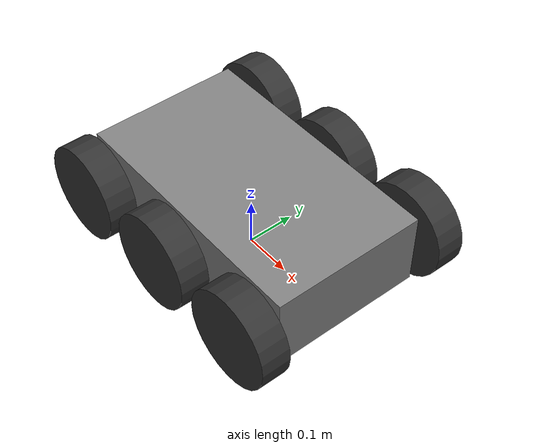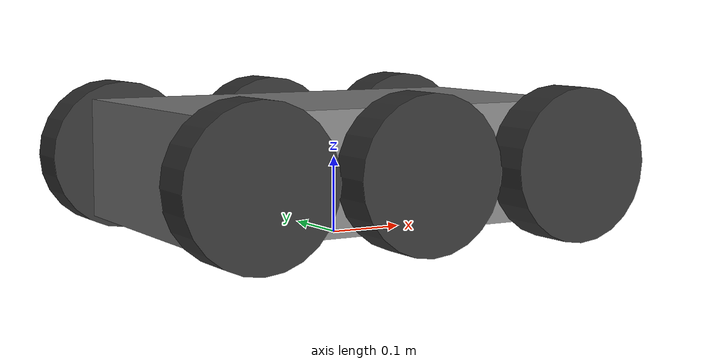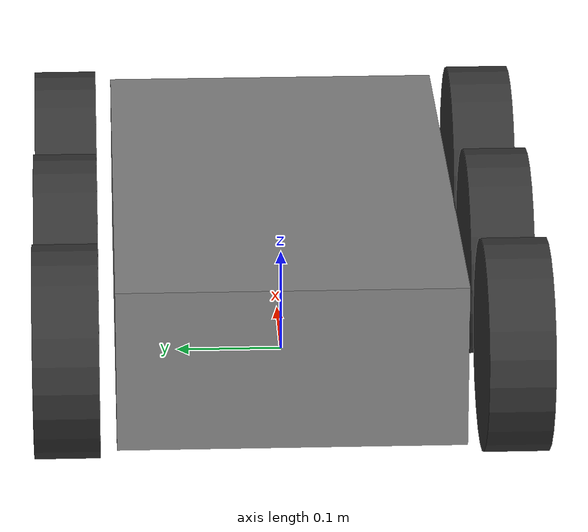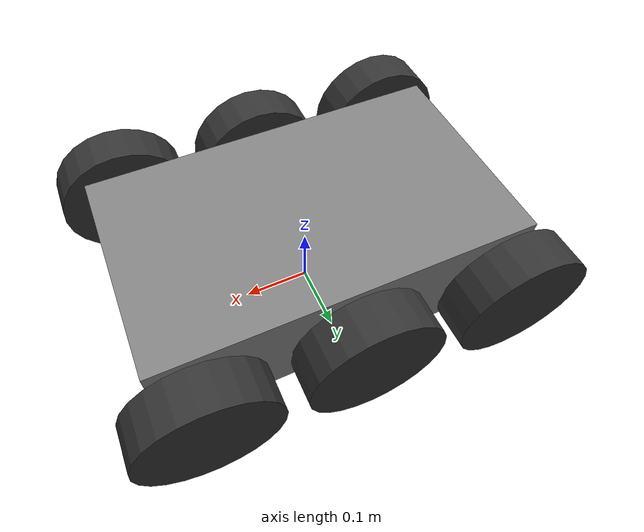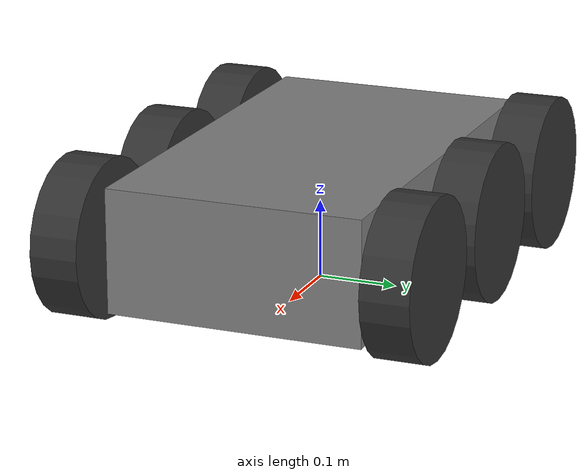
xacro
<?xml version="1.0"?>
<robot xmlns:controller="http://playerstage.sourceforge.net/gazebo/xmlschema/#controller"
  xmlns:interface="http://playerstage.sourceforge.net/gazebo/xmlschema/#interface"
  xmlns:xacro="http://ros.org/wiki/xacro"
  name="calvin_base">

  <xacro:property name="M_PI" value="3.1415926535897931" />

  <xacro:property name="wheel_width" value="0.06" />
  <xacro:property name="wheel_radius" value="0.0985" />
  <xacro:property name="axis_length" value="0.41" />
  <xacro:property name="wheel_x_offset" value="0.225" />
  <xacro:property name="wheel_z_offset" value="0.0" />
  <xacro:property name="turning_adaptation" value="0.69" />
  <xacro:property name="mass" value="10.0" />
  <xacro:property name="imu_stdev" value="0.00017" />

  <link name="base_link">
    <visual>
      <origin xyz="0 0 0" rpy="0 0 0" />
      <geometry>
        <box size="0.55 0.32 0.155" />
      </geometry>

      <material name="grey" >
        <color rgba="0.5 0.5 0.5 1" />
      </material>
    </visual>
    <collision>
      <origin xyz="0 0 0" rpy="0 0 0" />
      <geometry>
        <box size="1 1 1" />
      </geometry>
    </collision>
    <inertial>
<!--TODO where does the following come from? -->
<!--TODO add comment to kurt indoor urdf -->
      <mass value="${mass}" />
      <origin xyz="0.0 0.0 -0.040426445" />
      <inertia ixx="${mass * 0.007597848}" ixy="0.0" ixz="0.0"
        iyy="${mass * 0.012357128}" iyz="0.0"
        izz="${mass * 0.015397958}" />
    </inertial>
  </link>

  <gazebo reference="base_link">
    <material value="Gazebo/Grey" />
  </gazebo>

  <!-- publish ground truth for pose of base_footprint -->
  <gazebo>
    <controller:gazebo_ros_p3d name="base_footprint_controller" plugin="libgazebo_ros_p3d.so">
      <alwaysOn>true</alwaysOn>
      <updateRate>30.0</updateRate>
      <bodyName>base_footprint</bodyName>
      <topicName>base_footprint_pose_ground_truth</topicName>
      <gaussianNoise>0.0</gaussianNoise>
      <frameName>map</frameName>
      <interface:position name="base_footprint_p3d_position_iface" />
    </controller:gazebo_ros_p3d>
  </gazebo>

  <!-- inertial measurement unit for gazebo -->
  <xacro:imu_gazebo link="base_link" imu_topic="imu" update_rate="100.0" stdev="${imu_stdev}" />

  <xacro:macro name="calvin_wheel" params="name xyz rotate_visual">
    <!-- rotate_visual: 0 for right side, 1 for left side -->
    <link name="${name}_wheel_link">
      <visual>
        <origin xyz="0 0 0" rpy="${M_PI/2} 0 ${rotate_visual * M_PI}" />
        <geometry>
          <cylinder length="${wheel_width}" radius="${wheel_radius}"/>
        </geometry>

        <material name="blackish">
          <color rgba="0.2 0.2 0.2 1"/>
        </material>
      </visual>
      <collision>
        <origin xyz="0 0 0" rpy="${M_PI/2} 0 0" />
        <geometry>
          <!-- using STL for collision to fix http://answers.ros.org/question/2368/gazebo-model-wheels-slip-after-upgrade-to-electric -->
          <cylinder length="${wheel_width}" radius="${wheel_radius}"/>
        </geometry>
      </collision>
      <inertial>
<!--TODO where does the following come from? -->
<!--TODO add comment to kurt indoor urdf -->
        <mass value="0.075" />
        <origin xyz="0 0 0" />
        <inertia ixx="0.000066031" ixy="0.0" ixz="0.0"
          iyy="0.000129786" iyz="0.0"
          izz="0.000066031" />
      </inertial>
    </link>

    <!-- friction parameters -->
    <gazebo reference="${name}_wheel_link">
      <!-- PR2: -->

      <!-- Turtlebot: -->
      <mu1 value="10"/>
      <mu2 value="10"/>
      <kp value="100000000.0"/>
      <kd value="10000.0"/>
      <fdir1 value="1 0 0"/>  <!-- see http://answers.ros.org/question/607/rotation-error-in-gazebo-simulation -->
    </gazebo>

    <joint name="${name}_wheel_joint" type="continuous">
      <origin xyz="${xyz}" rpy="0 0 0" />
      <parent link="base_link"/>
      <child link="${name}_wheel_link"/>
      <axis xyz="0 1 0"/>
    </joint>
  </xacro:macro>

  <xacro:calvin_wheel name="left_front" xyz="${wheel_x_offset} ${axis_length/2} ${wheel_z_offset}" rotate_visual="1" />
  <xacro:calvin_wheel name="left_middle" xyz="0 ${axis_length/2} ${wheel_z_offset}" rotate_visual="1" />
  <xacro:calvin_wheel name="left_rear" xyz="${-wheel_x_offset} ${axis_length/2} ${wheel_z_offset}" rotate_visual="1" />
  <xacro:calvin_wheel name="right_front" xyz="${wheel_x_offset} ${-axis_length/2} ${wheel_z_offset}" rotate_visual="0" />
  <xacro:calvin_wheel name="right_middle" xyz="0 ${-axis_length/2} ${wheel_z_offset}" rotate_visual="0" />
  <xacro:calvin_wheel name="right_rear" xyz="${-wheel_x_offset} ${-axis_length/2} ${wheel_z_offset}" rotate_visual="0" />

  <!-- base_footprint is a fictitious link(frame) that is on the ground right below base_link origin,
       navigation stack dedpends on this frame -->
  <link name="base_footprint">
    <!-- this needs to have a fake inertial element, otherwise all children will be ignored by Gazebo -->
    <inertial>
      <mass value="0.0001" />
      <origin xyz="0 0 0" />
      <inertia ixx="0.0001" ixy="0.0" ixz="0.0"
        iyy="0.0001" iyz="0.0"
        izz="0.0001" />
    </inertial>
  </link>

  <joint name="base_footprint_joint" type="fixed">
    <origin xyz="0 0 ${-wheel_z_offset + wheel_radius}" rpy="0 0 0" />
    <parent link="base_footprint"/>
    <child link="base_link" />
  </joint>

</robot>
